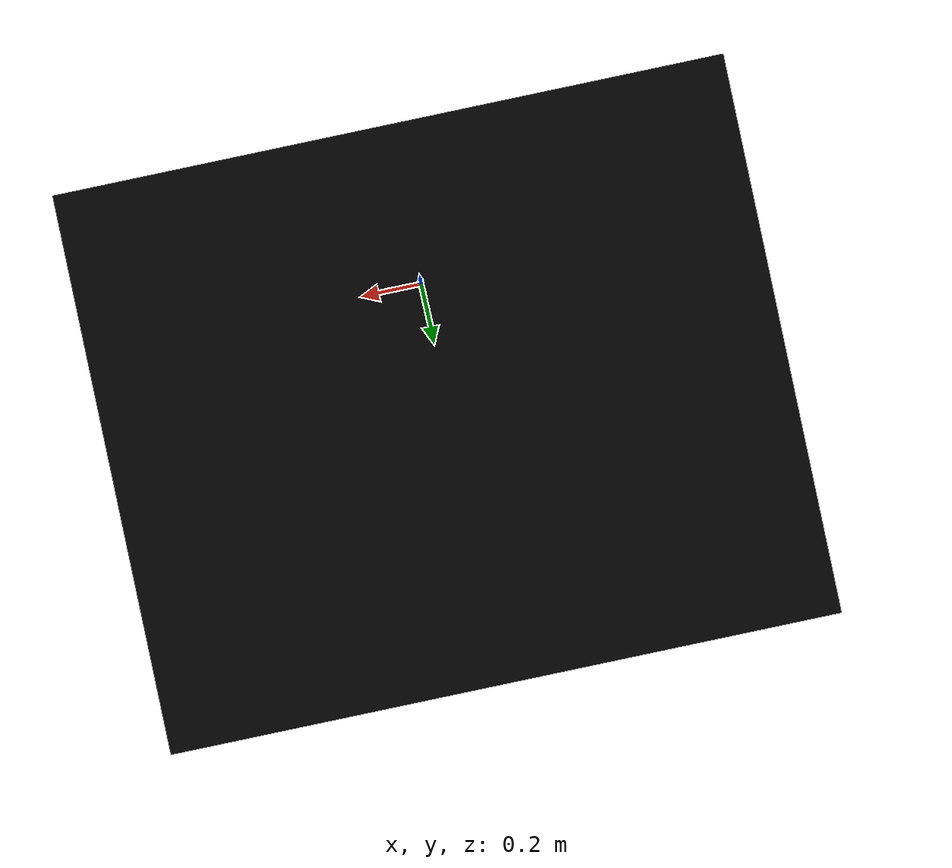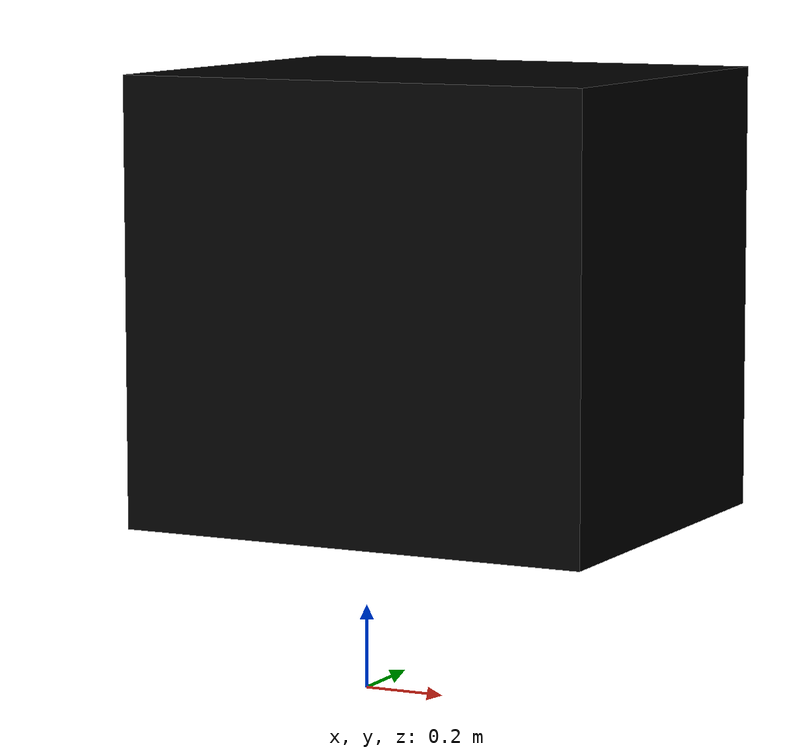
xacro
<?xml version="1.0"?>
<!-- Moveable light targets -->
<robot name="spinner2" xmlns:xacro="http://www.ros.org/wiki/xacro">

  <!-- Import all Gazebo-customization elements, including Gazebo colors -->
  <xacro:include filename="$(find spinner_description)/urdf/spinner2.gazebo" />
  <!-- Import Rviz colors -->
  <xacro:include filename="$(find spinner_description)/urdf/materials.xacro" />

  <!-- Robot State Publisher uses KDL,
       KDL requires the robot's root to have no intertia -->
  <link name="map" />
  <joint name="dummy" type="fixed"><parent link="map"/><child link="base"/>
    <origin xyz="0 0.4 0.4" rpy="0 0 0"/></joint>

  <link name="base">
    <collision>
      <origin xyz="0 0 0.5" rpy="0 0 0"/>
      <geometry>
	<box size="1.2 1.0 1.1"/>
      </geometry>
    </collision>

    <visual>
      <origin xyz="0 0 0.5" rpy="0 0 0"/>
      <geometry>
	<box size="1.2 1.0 1.1"/>
      </geometry>
      <material name="black"/>
    </visual>

    <inertial>
      <origin xyz="0 0 0.5" rpy="0 0 0"/>
      <mass value="100"/>
      <inertia
	  ixx="10" ixy="0.0" ixz="0.0"
	  iyy="10" iyz="0.0"
	  izz="10"/>
    </inertial>
  </link>

  <link name="arm0"><inertial><mass value="0.01"/><inertia ixx="1" ixy="0.0" ixz="0.0" iyy="1"
       iyz="0.0" izz="1"/></inertial></link>
  <link name="arm1"><inertial><mass value="0.01"/><inertia ixx="1" ixy="0.0" ixz="0.0" iyy="1"
       iyz="0.0" izz="1"/></inertial></link>

  <joint name="azimuth" type="prismatic">
    <parent link="base"/>
    <child link="arm0"/>
    <origin xyz="0 0.4 0.4" rpy="0 0 0"/>
    <axis xyz="1 0 0"/>
    <limit lower="-0.5" upper="0.5" effort="100" velocity="1" />
    <dynamics damping="10.0"/>
  </joint>

  <joint name="elevation" type="prismatic">
    <parent link="arm0"/>
    <child link="arm1"/>
    <origin xyz="0 0 0" rpy="0 0 0"/>
    <axis xyz="0 0 1"/>
    <limit lower="0" upper="0.5" effort="100" velocity="1" />
    <dynamics damping="10.0"/>
  </joint>

  <xacro:macro name="make_light" params="color">

  <link name="${color}_blk">
    <collision><geometry><sphere radius="0.05"/></geometry></collision>
    <visual>
      <geometry><sphere radius="0.05"/></geometry>
      <material name="${color}"/></visual>
    <inertial>
      <mass value="0.01"/>
      <inertia ixx="1" ixy="0.0" ixz="0.0" iyy="1" iyz="0.0" izz="1"/></inertial>
  </link>
  <joint name="${color}_jt" type="prismatic">
    <parent link="arm1"/>
    <child link="${color}_blk"/>
    <limit lower="0" upper="0.1" effort="10" velocity="10" />
    <axis xyz="0 1 0"/>
    <origin xyz="0 0 0" rpy="0 0 0"/>
  </joint>
  </xacro:macro>

  <transmission name="azimuth_ctl">
    <type>transmission_interface/SimpleTransmission</type>
    <joint name="azimuth">
      <hardwareInterface>EffortJointInterface</hardwareInterface>
    </joint>
    <actuator name="azimuth_drv">
      <hardwareInterface>EffortJointInterface</hardwareInterface>
      <mechanicalReduction>1</mechanicalReduction>
    </actuator>
  </transmission>
  <transmission name="elevation_ctl">
    <type>transmission_interface/SimpleTransmission</type>
    <joint name="elevation">
      <hardwareInterface>EffortJointInterface</hardwareInterface>
    </joint>
    <actuator name="elevation_drv">
      <hardwareInterface>EffortJointInterface</hardwareInterface>
      <mechanicalReduction>1</mechanicalReduction>
    </actuator>
  </transmission>

</robot>

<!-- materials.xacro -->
<robot>

  <material name="black">
    <color rgba="0.0 0.0 0.0 1.0"/>
  </material>

  <material name="blue">
    <color rgba="0.0 0.0 0.8 1.0"/>
  </material>

  <material name="green">
    <color rgba="0.0 0.8 0.0 1.0"/>
  </material>

  <material name="grey">
    <color rgba="0.2 0.2 0.2 1.0"/>
  </material>

  <material name="gold">
    <color rgba="${255/255} ${215/255} ${0/255} 1.0"/>
  </material>

  <material name="orange">
    <color rgba="${255/255} ${108/255} ${10/255} 1.0"/>
  </material>

  <material name="brown">
    <color rgba="${222/255} ${207/255} ${195/255} 1.0"/>
  </material>

  <material name="red">
    <color rgba="0.8 0.0 0.0 1.0"/>
  </material>

  <material name="yellow">
    <color rgba="0.6 0.6 0.0 1.0"/>
  </material>

  <material name="white">
    <color rgba="1.0 1.0 1.0 1.0"/>
  </material>

  <material name="whorl">
    <texture filename="package://spinner_description/materials/textures/barrelgradient.png" />
  </material>

  <material name="squares">
    <texture filename="package://spinner_description/materials/textures/squares.png" />
  </material>

</robot>
